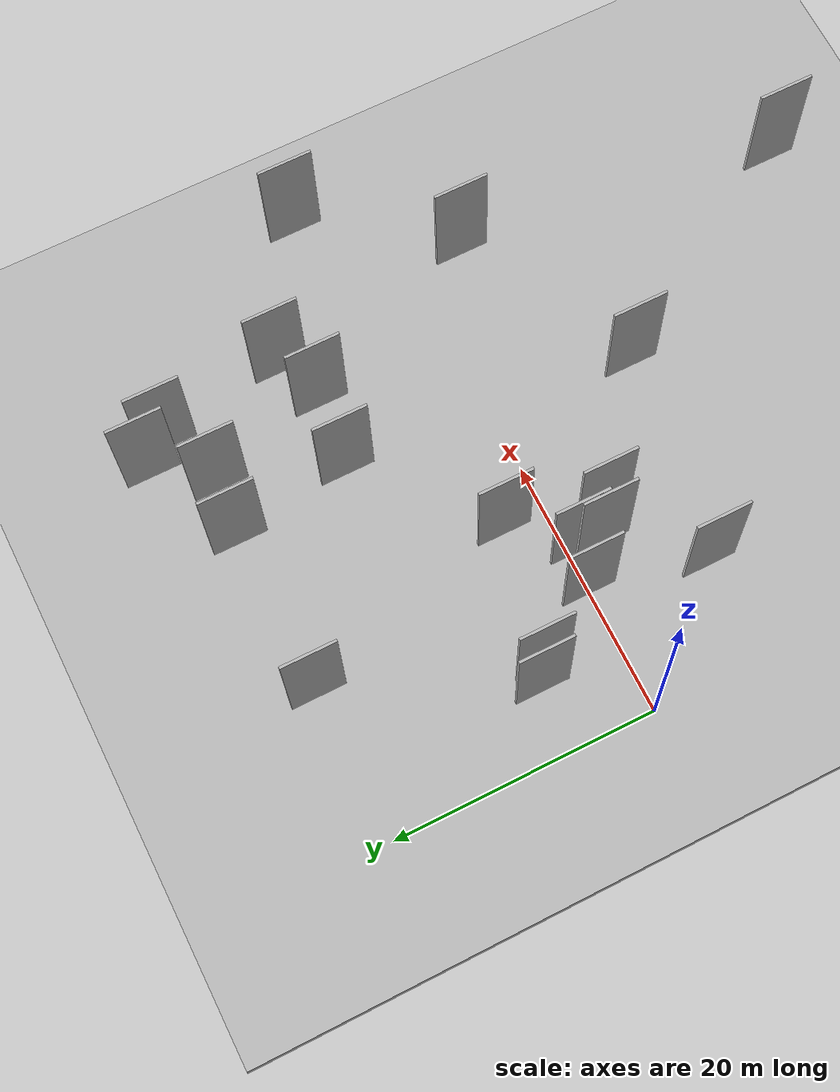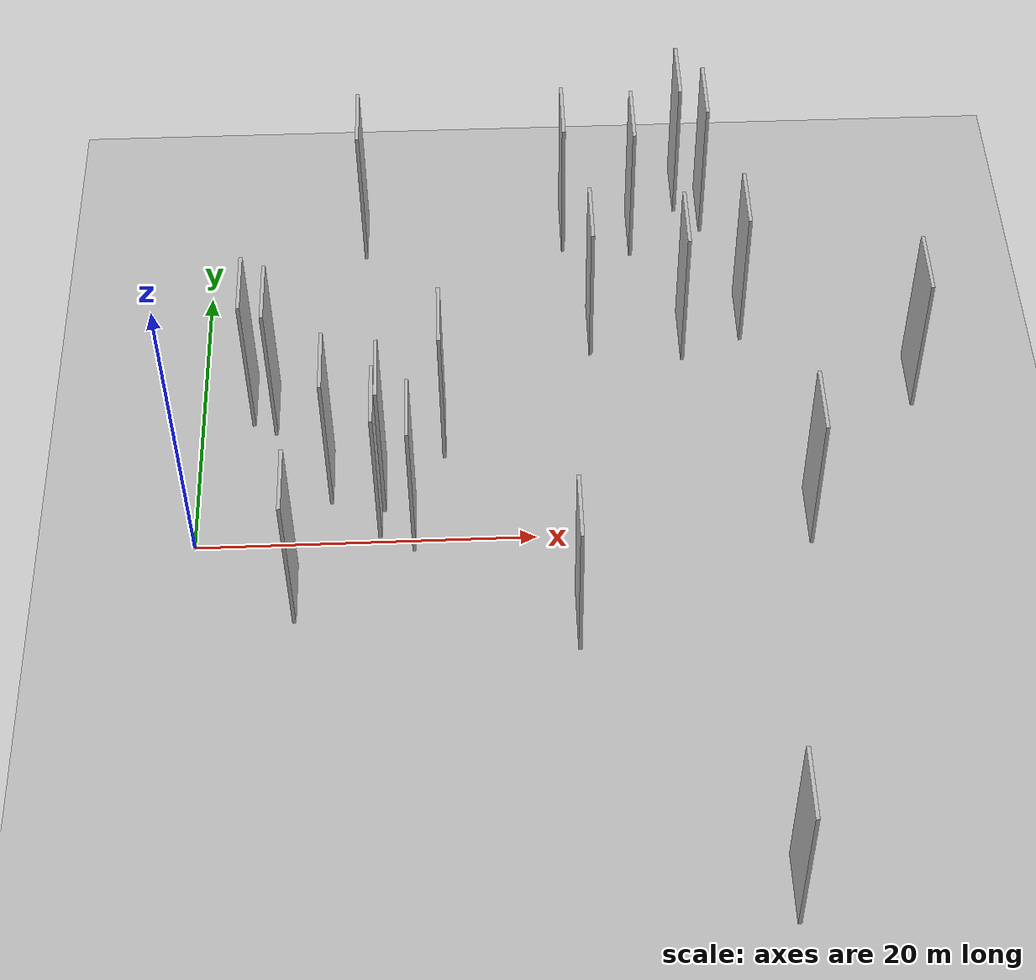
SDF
<?xml version="1.0" encoding="utf-8"?>

<sdf version="1.6">

   <world name="default">

      <gui fullscreen="0">

         <camera name="user_camera">

            <pose>-15 0 4.57585 0 0 0</pose>

            <view_controller>orbit</view_controller>

         </camera>

      </gui>

      <scene>

         <sky>

           <clouds>

             <speed>12</speed>

           </clouds>

         </sky>

         <ambient>0.4 0.4 0.4 1</ambient>

         <background>0.7 0.7 0.7 1</background>

         <shadows>1</shadows>

      </scene>

      <gravity>0 0 -9.8066</gravity>

      <magnetic_field>6e-06 2.3e-05 -4.2e-05</magnetic_field>

      <physics default="0" name="default_physics" type="ode">

         <ode>

            <solver>

               <type>quick</type>

               <iters>10</iters>

               <sor>1.0</sor>

               <use_dynamic_moi_rescaling>0</use_dynamic_moi_rescaling>

            </solver>

            <constraints>

               <cfm>0</cfm>

               <erp>0.2</erp>

               <contact_max_correcting_vel>100</contact_max_correcting_vel>

               <contact_surface_layer>0.001</contact_surface_layer>

            </constraints>

         </ode>

         <max_step_size>0.004</max_step_size>

         <real_time_factor>1</real_time_factor>

         <real_time_update_rate>250</real_time_update_rate>

      </physics>

      <light name="sun" type="directional">

         <cast_shadows>1</cast_shadows>

         <pose>0 0 10 0 0 0</pose>

         <diffuse>0.8 0.8 0.8 1</diffuse>

         <specular>0.2 0.2 0.2 1</specular>

         <attenuation>

            <range>1000</range>

            <constant>0.9</constant>

            <linear>0.01</linear>

            <quadratic>0.001</quadratic>

         </attenuation>

         <direction>-0.5 0.1 -0.9</direction>

      </light>

      <include>

         <name>ground_plane_1</name>

         <uri>model://HANNAS_ground_plane</uri>

         <pose>0 0 0  0 0 0</pose>

      </include>

      <include>

         <name>ground_plane_2</name>

         <uri>model://HANNAS_ground_plane</uri>

         <pose>100 0 0  0 0 0</pose>

      </include>

      <model name="HANNAS_wall_1">

         <static>1</static>

         <pose frame="">11.1297 -1.5539 5.0 0.000000 0.000000 1.570796</pose>

         <link name="link">

            <pose frame="">0 0 5.00 0 0 0</pose>

            <collision name="collision">

               <geometry>

                  <box>

                     <size>4.00 0.2 10.00</size>

                  </box>

               </geometry>

               <max_contacts>10</max_contacts>

               <surface>

                  <contact>

                     <ode/>

                  </contact>

                  <bounce/>

                  <friction>

                     <torsional>

                        <ode/>

                     </torsional>

                     <ode/>

                  </friction>

               </surface>

            </collision>

            <visual name="visual">

               <cast_shadows>0</cast_shadows>

               <geometry>

                  <box>

                     <size>4.00 0.2 10.00</size>

                  </box>

               </geometry>

               <material>

                  <script>

                     <uri>model://HANNAS_wall/materials/scripts</uri>

                     <uri>model://HANNAS_wall/materials/textures</uri>

                     <name>vrc/HANNAS_wall</name>

                  </script>

               </material>

            </visual>

            <self_collide>0</self_collide>

            <enable_wind>0</enable_wind>

            <kinematic>0</kinematic>

         </link>

      </model>

      <model name="HANNAS_wall_2">

         <static>1</static>

         <pose frame="">29.5291 23.8519 5.0 0.000000 0.000000 1.570796</pose>

         <link name="link">

            <pose frame="">0 0 5.00 0 0 0</pose>

            <collision name="collision">

               <geometry>

                  <box>

                     <size>4.00 0.2 10.00</size>

                  </box>

               </geometry>

               <max_contacts>10</max_contacts>

               <surface>

                  <contact>

                     <ode/>

                  </contact>

                  <bounce/>

                  <friction>

                     <torsional>

                        <ode/>

                     </torsional>

                     <ode/>

                  </friction>

               </surface>

            </collision>

            <visual name="visual">

               <cast_shadows>0</cast_shadows>

               <geometry>

                  <box>

                     <size>4.00 0.2 10.00</size>

                  </box>

               </geometry>

               <material>

                  <script>

                     <uri>model://HANNAS_wall/materials/scripts</uri>

                     <uri>model://HANNAS_wall/materials/textures</uri>

                     <name>vrc/HANNAS_wall</name>

                  </script>

               </material>

            </visual>

            <self_collide>0</self_collide>

            <enable_wind>0</enable_wind>

            <kinematic>0</kinematic>

         </link>

      </model>

      <model name="HANNAS_wall_3">

         <static>1</static>

         <pose frame="">10.1444 20.3905 5.0 0.000000 0.000000 1.570796</pose>

         <link name="link">

            <pose frame="">0 0 5.00 0 0 0</pose>

            <collision name="collision">

               <geometry>

                  <box>

                     <size>4.00 0.2 10.00</size>

                  </box>

               </geometry>

               <max_contacts>10</max_contacts>

               <surface>

                  <contact>

                     <ode/>

                  </contact>

                  <bounce/>

                  <friction>

                     <torsional>

                        <ode/>

                     </torsional>

                     <ode/>

                  </friction>

               </surface>

            </collision>

            <visual name="visual">

               <cast_shadows>0</cast_shadows>

               <geometry>

                  <box>

                     <size>4.00 0.2 10.00</size>

                  </box>

               </geometry>

               <material>

                  <script>

                     <uri>model://HANNAS_wall/materials/scripts</uri>

                     <uri>model://HANNAS_wall/materials/textures</uri>

                     <name>vrc/HANNAS_wall</name>

                  </script>

               </material>

            </visual>

            <self_collide>0</self_collide>

            <enable_wind>0</enable_wind>

            <kinematic>0</kinematic>

         </link>

      </model>

      <model name="HANNAS_wall_4">

         <static>1</static>

         <pose frame="">14.7933 4.1425 5.0 0.000000 0.000000 1.570796</pose>

         <link name="link">

            <pose frame="">0 0 5.00 0 0 0</pose>

            <collision name="collision">

               <geometry>

                  <box>

                     <size>4.00 0.2 10.00</size>

                  </box>

               </geometry>

               <max_contacts>10</max_contacts>

               <surface>

                  <contact>

                     <ode/>

                  </contact>

                  <bounce/>

                  <friction>

                     <torsional>

                        <ode/>

                     </torsional>

                     <ode/>

                  </friction>

               </surface>

            </collision>

            <visual name="visual">

               <cast_shadows>0</cast_shadows>

               <geometry>

                  <box>

                     <size>4.00 0.2 10.00</size>

                  </box>

               </geometry>

               <material>

                  <script>

                     <uri>model://HANNAS_wall/materials/scripts</uri>

                     <uri>model://HANNAS_wall/materials/textures</uri>

                     <name>vrc/HANNAS_wall</name>

                  </script>

               </material>

            </visual>

            <self_collide>0</self_collide>

            <enable_wind>0</enable_wind>

            <kinematic>0</kinematic>

         </link>

      </model>

      <model name="HANNAS_wall_5">

         <static>1</static>

         <pose frame="">8.3666 0.9878 5.0 0.000000 0.000000 1.570796</pose>

         <link name="link">

            <pose frame="">0 0 5.00 0 0 0</pose>

            <collision name="collision">

               <geometry>

                  <box>

                     <size>4.00 0.2 10.00</size>

                  </box>

               </geometry>

               <max_contacts>10</max_contacts>

               <surface>

                  <contact>

                     <ode/>

                  </contact>

                  <bounce/>

                  <friction>

                     <torsional>

                        <ode/>

                     </torsional>

                     <ode/>

                  </friction>

               </surface>

            </collision>

            <visual name="visual">

               <cast_shadows>0</cast_shadows>

               <geometry>

                  <box>

                     <size>4.00 0.2 10.00</size>

                  </box>

               </geometry>

               <material>

                  <script>

                     <uri>model://HANNAS_wall/materials/scripts</uri>

                     <uri>model://HANNAS_wall/materials/textures</uri>

                     <name>vrc/HANNAS_wall</name>

                  </script>

               </material>

            </visual>

            <self_collide>0</self_collide>

            <enable_wind>0</enable_wind>

            <kinematic>0</kinematic>

         </link>

      </model>

      <model name="HANNAS_wall_6">

         <static>1</static>

         <pose frame="">6.4763 -7.2649 5.0 0.000000 0.000000 1.570796</pose>

         <link name="link">

            <pose frame="">0 0 5.00 0 0 0</pose>

            <collision name="collision">

               <geometry>

                  <box>

                     <size>4.00 0.2 10.00</size>

                  </box>

               </geometry>

               <max_contacts>10</max_contacts>

               <surface>

                  <contact>

                     <ode/>

                  </contact>

                  <bounce/>

                  <friction>

                     <torsional>

                        <ode/>

                     </torsional>

                     <ode/>

                  </friction>

               </surface>

            </collision>

            <visual name="visual">

               <cast_shadows>0</cast_shadows>

               <geometry>

                  <box>

                     <size>4.00 0.2 10.00</size>

                  </box>

               </geometry>

               <material>

                  <script>

                     <uri>model://HANNAS_wall/materials/scripts</uri>

                     <uri>model://HANNAS_wall/materials/textures</uri>

                     <name>vrc/HANNAS_wall</name>

                  </script>

               </material>

            </visual>

            <self_collide>0</self_collide>

            <enable_wind>0</enable_wind>

            <kinematic>0</kinematic>

         </link>

      </model>

      <model name="HANNAS_wall_7">

         <static>1</static>

         <pose frame="">31.9861 -26.5247 5.0 0.000000 0.000000 1.570796</pose>

         <link name="link">

            <pose frame="">0 0 5.00 0 0 0</pose>

            <collision name="collision">

               <geometry>

                  <box>

                     <size>4.00 0.2 10.00</size>

                  </box>

               </geometry>

               <max_contacts>10</max_contacts>

               <surface>

                  <contact>

                     <ode/>

                  </contact>

                  <bounce/>

                  <friction>

                     <torsional>

                        <ode/>

                     </torsional>

                     <ode/>

                  </friction>

               </surface>

            </collision>

            <visual name="visual">

               <cast_shadows>0</cast_shadows>

               <geometry>

                  <box>

                     <size>4.00 0.2 10.00</size>

                  </box>

               </geometry>

               <material>

                  <script>

                     <uri>model://HANNAS_wall/materials/scripts</uri>

                     <uri>model://HANNAS_wall/materials/textures</uri>

                     <name>vrc/HANNAS_wall</name>

                  </script>

               </material>

            </visual>

            <self_collide>0</self_collide>

            <enable_wind>0</enable_wind>

            <kinematic>0</kinematic>

         </link>

      </model>

      <model name="HANNAS_wall_8">

         <static>1</static>

         <pose frame="">31.0269 21.9897 5.0 0.000000 0.000000 1.570796</pose>

         <link name="link">

            <pose frame="">0 0 5.00 0 0 0</pose>

            <collision name="collision">

               <geometry>

                  <box>

                     <size>4.00 0.2 10.00</size>

                  </box>

               </geometry>

               <max_contacts>10</max_contacts>

               <surface>

                  <contact>

                     <ode/>

                  </contact>

                  <bounce/>

                  <friction>

                     <torsional>

                        <ode/>

                     </torsional>

                     <ode/>

                  </friction>

               </surface>

            </collision>

            <visual name="visual">

               <cast_shadows>0</cast_shadows>

               <geometry>

                  <box>

                     <size>4.00 0.2 10.00</size>

                  </box>

               </geometry>

               <material>

                  <script>

                     <uri>model://HANNAS_wall/materials/scripts</uri>

                     <uri>model://HANNAS_wall/materials/textures</uri>

                     <name>vrc/HANNAS_wall</name>

                  </script>

               </material>

            </visual>

            <self_collide>0</self_collide>

            <enable_wind>0</enable_wind>

            <kinematic>0</kinematic>

         </link>

      </model>

      <model name="HANNAS_wall_9">

         <static>1</static>

         <pose frame="">22.3594 20.5484 5.0 0.000000 0.000000 1.570796</pose>

         <link name="link">

            <pose frame="">0 0 5.00 0 0 0</pose>

            <collision name="collision">

               <geometry>

                  <box>

                     <size>4.00 0.2 10.00</size>

                  </box>

               </geometry>

               <max_contacts>10</max_contacts>

               <surface>

                  <contact>

                     <ode/>

                  </contact>

                  <bounce/>

                  <friction>

                     <torsional>

                        <ode/>

                     </torsional>

                     <ode/>

                  </friction>

               </surface>

            </collision>

            <visual name="visual">

               <cast_shadows>0</cast_shadows>

               <geometry>

                  <box>

                     <size>4.00 0.2 10.00</size>

                  </box>

               </geometry>

               <material>

                  <script>

                     <uri>model://HANNAS_wall/materials/scripts</uri>

                     <uri>model://HANNAS_wall/materials/textures</uri>

                     <name>vrc/HANNAS_wall</name>

                  </script>

               </material>

            </visual>

            <self_collide>0</self_collide>

            <enable_wind>0</enable_wind>

            <kinematic>0</kinematic>

         </link>

      </model>

      <model name="HANNAS_wall_10">

         <static>1</static>

         <pose frame="">35.2709 -2.9029 5.0 0.000000 0.000000 1.570796</pose>

         <link name="link">

            <pose frame="">0 0 5.00 0 0 0</pose>

            <collision name="collision">

               <geometry>

                  <box>

                     <size>4.00 0.2 10.00</size>

                  </box>

               </geometry>

               <max_contacts>10</max_contacts>

               <surface>

                  <contact>

                     <ode/>

                  </contact>

                  <bounce/>

                  <friction>

                     <torsional>

                        <ode/>

                     </torsional>

                     <ode/>

                  </friction>

               </surface>

            </collision>

            <visual name="visual">

               <cast_shadows>0</cast_shadows>

               <geometry>

                  <box>

                     <size>4.00 0.2 10.00</size>

                  </box>

               </geometry>

               <material>

                  <script>

                     <uri>model://HANNAS_wall/materials/scripts</uri>

                     <uri>model://HANNAS_wall/materials/textures</uri>

                     <name>vrc/HANNAS_wall</name>

                  </script>

               </material>

            </visual>

            <self_collide>0</self_collide>

            <enable_wind>0</enable_wind>

            <kinematic>0</kinematic>

         </link>

      </model>

      <model name="HANNAS_wall_11">

         <static>1</static>

         <pose frame="">29.0860 11.2136 5.0 0.000000 0.000000 1.570796</pose>

         <link name="link">

            <pose frame="">0 0 5.00 0 0 0</pose>

            <collision name="collision">

               <geometry>

                  <box>

                     <size>4.00 0.2 10.00</size>

                  </box>

               </geometry>

               <max_contacts>10</max_contacts>

               <surface>

                  <contact>

                     <ode/>

                  </contact>

                  <bounce/>

                  <friction>

                     <torsional>

                        <ode/>

                     </torsional>

                     <ode/>

                  </friction>

               </surface>

            </collision>

            <visual name="visual">

               <cast_shadows>0</cast_shadows>

               <geometry>

                  <box>

                     <size>4.00 0.2 10.00</size>

                  </box>

               </geometry>

               <material>

                  <script>

                     <uri>model://HANNAS_wall/materials/scripts</uri>

                     <uri>model://HANNAS_wall/materials/textures</uri>

                     <name>vrc/HANNAS_wall</name>

                  </script>

               </material>

            </visual>

            <self_collide>0</self_collide>

            <enable_wind>0</enable_wind>

            <kinematic>0</kinematic>

         </link>

      </model>

      <model name="HANNAS_wall_12">

         <static>1</static>

         <pose frame="">13.0392 -2.5714 5.0 0.000000 0.000000 1.570796</pose>

         <link name="link">

            <pose frame="">0 0 5.00 0 0 0</pose>

            <collision name="collision">

               <geometry>

                  <box>

                     <size>4.00 0.2 10.00</size>

                  </box>

               </geometry>

               <max_contacts>10</max_contacts>

               <surface>

                  <contact>

                     <ode/>

                  </contact>

                  <bounce/>

                  <friction>

                     <torsional>

                        <ode/>

                     </torsional>

                     <ode/>

                  </friction>

               </surface>

            </collision>

            <visual name="visual">

               <cast_shadows>0</cast_shadows>

               <geometry>

                  <box>

                     <size>4.00 0.2 10.00</size>

                  </box>

               </geometry>

               <material>

                  <script>

                     <uri>model://HANNAS_wall/materials/scripts</uri>

                     <uri>model://HANNAS_wall/materials/textures</uri>

                     <name>vrc/HANNAS_wall</name>

                  </script>

               </material>

            </visual>

            <self_collide>0</self_collide>

            <enable_wind>0</enable_wind>

            <kinematic>0</kinematic>

         </link>

      </model>

      <model name="HANNAS_wall_13">

         <static>1</static>

         <pose frame="">5.0522 6.2345 5.0 0.000000 0.000000 1.570796</pose>

         <link name="link">

            <pose frame="">0 0 5.00 0 0 0</pose>

            <collision name="collision">

               <geometry>

                  <box>

                     <size>4.00 0.2 10.00</size>

                  </box>

               </geometry>

               <max_contacts>10</max_contacts>

               <surface>

                  <contact>

                     <ode/>

                  </contact>

                  <bounce/>

                  <friction>

                     <torsional>

                        <ode/>

                     </torsional>

                     <ode/>

                  </friction>

               </surface>

            </collision>

            <visual name="visual">

               <cast_shadows>0</cast_shadows>

               <geometry>

                  <box>

                     <size>4.00 0.2 10.00</size>

                  </box>

               </geometry>

               <material>

                  <script>

                     <uri>model://HANNAS_wall/materials/scripts</uri>

                     <uri>model://HANNAS_wall/materials/textures</uri>

                     <name>vrc/HANNAS_wall</name>

                  </script>

               </material>

            </visual>

            <self_collide>0</self_collide>

            <enable_wind>0</enable_wind>

            <kinematic>0</kinematic>

         </link>

      </model>

      <model name="HANNAS_wall_14">

         <static>1</static>

         <pose frame="">3.7349 6.9619 5.0 0.000000 0.000000 1.570796</pose>

         <link name="link">

            <pose frame="">0 0 5.00 0 0 0</pose>

            <collision name="collision">

               <geometry>

                  <box>

                     <size>4.00 0.2 10.00</size>

                  </box>

               </geometry>

               <max_contacts>10</max_contacts>

               <surface>

                  <contact>

                     <ode/>

                  </contact>

                  <bounce/>

                  <friction>

                     <torsional>

                        <ode/>

                     </torsional>

                     <ode/>

                  </friction>

               </surface>

            </collision>

            <visual name="visual">

               <cast_shadows>0</cast_shadows>

               <geometry>

                  <box>

                     <size>4.00 0.2 10.00</size>

                  </box>

               </geometry>

               <material>

                  <script>

                     <uri>model://HANNAS_wall/materials/scripts</uri>

                     <uri>model://HANNAS_wall/materials/textures</uri>

                     <name>vrc/HANNAS_wall</name>

                  </script>

               </material>

            </visual>

            <self_collide>0</self_collide>

            <enable_wind>0</enable_wind>

            <kinematic>0</kinematic>

         </link>

      </model>

      <model name="HANNAS_wall_15">

         <static>1</static>

         <pose frame="">11.3576 0.3261 5.0 0.000000 0.000000 1.570796</pose>

         <link name="link">

            <pose frame="">0 0 5.00 0 0 0</pose>

            <collision name="collision">

               <geometry>

                  <box>

                     <size>4.00 0.2 10.00</size>

                  </box>

               </geometry>

               <max_contacts>10</max_contacts>

               <surface>

                  <contact>

                     <ode/>

                  </contact>

                  <bounce/>

                  <friction>

                     <torsional>

                        <ode/>

                     </torsional>

                     <ode/>

                  </friction>

               </surface>

            </collision>

            <visual name="visual">

               <cast_shadows>0</cast_shadows>

               <geometry>

                  <box>

                     <size>4.00 0.2 10.00</size>

                  </box>

               </geometry>

               <material>

                  <script>

                     <uri>model://HANNAS_wall/materials/scripts</uri>

                     <uri>model://HANNAS_wall/materials/textures</uri>

                     <name>vrc/HANNAS_wall</name>

                  </script>

               </material>

            </visual>

            <self_collide>0</self_collide>

            <enable_wind>0</enable_wind>

            <kinematic>0</kinematic>

         </link>

      </model>

      <model name="HANNAS_wall_16">

         <static>1</static>

         <pose frame="">23.6313 11.7906 5.0 0.000000 0.000000 1.570796</pose>

         <link name="link">

            <pose frame="">0 0 5.00 0 0 0</pose>

            <collision name="collision">

               <geometry>

                  <box>

                     <size>4.00 0.2 10.00</size>

                  </box>

               </geometry>

               <max_contacts>10</max_contacts>

               <surface>

                  <contact>

                     <ode/>

                  </contact>

                  <bounce/>

                  <friction>

                     <torsional>

                        <ode/>

                     </torsional>

                     <ode/>

                  </friction>

               </surface>

            </collision>

            <visual name="visual">

               <cast_shadows>0</cast_shadows>

               <geometry>

                  <box>

                     <size>4.00 0.2 10.00</size>

                  </box>

               </geometry>

               <material>

                  <script>

                     <uri>model://HANNAS_wall/materials/scripts</uri>

                     <uri>model://HANNAS_wall/materials/textures</uri>

                     <name>vrc/HANNAS_wall</name>

                  </script>

               </material>

            </visual>

            <self_collide>0</self_collide>

            <enable_wind>0</enable_wind>

            <kinematic>0</kinematic>

         </link>

      </model>

      <model name="HANNAS_wall_17">

         <static>1</static>

         <pose frame="">32.6842 12.6588 5.0 0.000000 0.000000 1.570796</pose>

         <link name="link">

            <pose frame="">0 0 5.00 0 0 0</pose>

            <collision name="collision">

               <geometry>

                  <box>

                     <size>4.00 0.2 10.00</size>

                  </box>

               </geometry>

               <max_contacts>10</max_contacts>

               <surface>

                  <contact>

                     <ode/>

                  </contact>

                  <bounce/>

                  <friction>

                     <torsional>

                        <ode/>

                     </torsional>

                     <ode/>

                  </friction>

               </surface>

            </collision>

            <visual name="visual">

               <cast_shadows>0</cast_shadows>

               <geometry>

                  <box>

                     <size>4.00 0.2 10.00</size>

                  </box>

               </geometry>

               <material>

                  <script>

                     <uri>model://HANNAS_wall/materials/scripts</uri>

                     <uri>model://HANNAS_wall/materials/textures</uri>

                     <name>vrc/HANNAS_wall</name>

                  </script>

               </material>

            </visual>

            <self_collide>0</self_collide>

            <enable_wind>0</enable_wind>

            <kinematic>0</kinematic>

         </link>

      </model>

      <model name="HANNAS_wall_18">

         <static>1</static>

         <pose frame="">21.9645 -9.5966 5.0 0.000000 0.000000 1.570796</pose>

         <link name="link">

            <pose frame="">0 0 5.00 0 0 0</pose>

            <collision name="collision">

               <geometry>

                  <box>

                     <size>4.00 0.2 10.00</size>

                  </box>

               </geometry>

               <max_contacts>10</max_contacts>

               <surface>

                  <contact>

                     <ode/>

                  </contact>

                  <bounce/>

                  <friction>

                     <torsional>

                        <ode/>

                     </torsional>

                     <ode/>

                  </friction>

               </surface>

            </collision>

            <visual name="visual">

               <cast_shadows>0</cast_shadows>

               <geometry>

                  <box>

                     <size>4.00 0.2 10.00</size>

                  </box>

               </geometry>

               <material>

                  <script>

                     <uri>model://HANNAS_wall/materials/scripts</uri>

                     <uri>model://HANNAS_wall/materials/textures</uri>

                     <name>vrc/HANNAS_wall</name>

                  </script>

               </material>

            </visual>

            <self_collide>0</self_collide>

            <enable_wind>0</enable_wind>

            <kinematic>0</kinematic>

         </link>

      </model>

      <model name="HANNAS_wall_19">

         <static>1</static>

         <pose frame="">26.5255 20.0695 5.0 0.000000 0.000000 1.570796</pose>

         <link name="link">

            <pose frame="">0 0 5.00 0 0 0</pose>

            <collision name="collision">

               <geometry>

                  <box>

                     <size>4.00 0.2 10.00</size>

                  </box>

               </geometry>

               <max_contacts>10</max_contacts>

               <surface>

                  <contact>

                     <ode/>

                  </contact>

                  <bounce/>

                  <friction>

                     <torsional>

                        <ode/>

                     </torsional>

                     <ode/>

                  </friction>

               </surface>

            </collision>

            <visual name="visual">

               <cast_shadows>0</cast_shadows>

               <geometry>

                  <box>

                     <size>4.00 0.2 10.00</size>

                  </box>

               </geometry>

               <material>

                  <script>

                     <uri>model://HANNAS_wall/materials/scripts</uri>

                     <uri>model://HANNAS_wall/materials/textures</uri>

                     <name>vrc/HANNAS_wall</name>

                  </script>

               </material>

            </visual>

            <self_collide>0</self_collide>

            <enable_wind>0</enable_wind>

            <kinematic>0</kinematic>

         </link>

      </model>

      <model name="HANNAS_wall_20">

         <static>1</static>

         <pose frame="">42.3182 7.0560 5.0 0.000000 0.000000 1.570796</pose>

         <link name="link">

            <pose frame="">0 0 5.00 0 0 0</pose>

            <collision name="collision">

               <geometry>

                  <box>

                     <size>4.00 0.2 10.00</size>

                  </box>

               </geometry>

               <max_contacts>10</max_contacts>

               <surface>

                  <contact>

                     <ode/>

                  </contact>

                  <bounce/>

                  <friction>

                     <torsional>

                        <ode/>

                     </torsional>

                     <ode/>

                  </friction>

               </surface>

            </collision>

            <visual name="visual">

               <cast_shadows>0</cast_shadows>

               <geometry>

                  <box>

                     <size>4.00 0.2 10.00</size>

                  </box>

               </geometry>

               <material>

                  <script>

                     <uri>model://HANNAS_wall/materials/scripts</uri>

                     <uri>model://HANNAS_wall/materials/textures</uri>

                     <name>vrc/HANNAS_wall</name>

                  </script>

               </material>

            </visual>

            <self_collide>0</self_collide>

            <enable_wind>0</enable_wind>

            <kinematic>0</kinematic>

         </link>

      </model>

   </world>

</sdf>

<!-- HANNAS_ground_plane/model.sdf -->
<sdf version="1.4">
<model name="HANNAS_ground_plane">
  <static>true</static>
    <link name="link">
      <collision name="collision">
        <geometry>
          <plane>
            <normal>0 0 1</normal>
            <size>1000 1000</size>
          </plane>
        </geometry>
        <surface>
          <friction>
            <ode>
              <mu>100</mu>
              <mu2>50</mu2>
            </ode>
          </friction>
        </surface>
      </collision>
      <visual name="visual">
        <cast_shadows>false</cast_shadows>
        <geometry>
          <plane>
            <normal>0 0 1</normal>
            <size>1000 1000</size>
          </plane>
        </geometry>
        <material>
          <script>
            <uri>model://HANNAS_ground_plane/materials/scripts/HANNAS_ground_plane.material</uri>
	    <uri>model://HANNAS_ground_plane/materials/textures</uri>
            <name>HANNASGroundPlane/Image</name>
          </script>
        </material>
      </visual>
    </link>
  </model>
</sdf>
